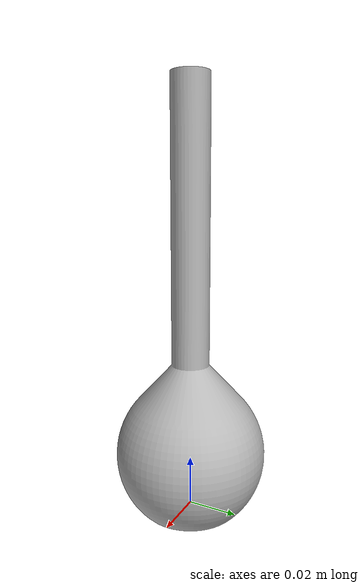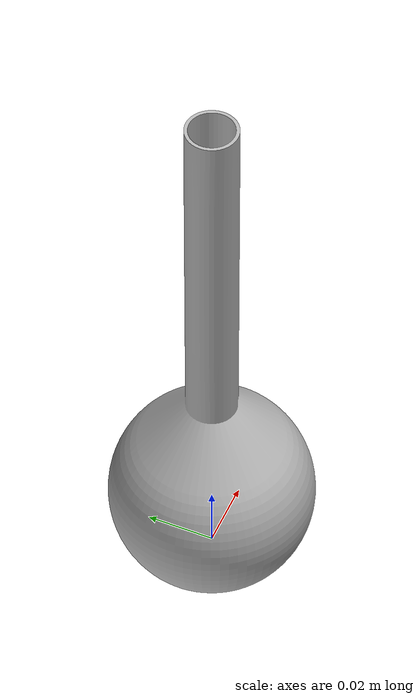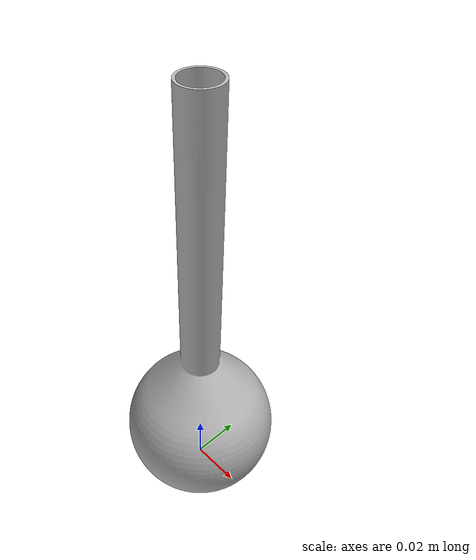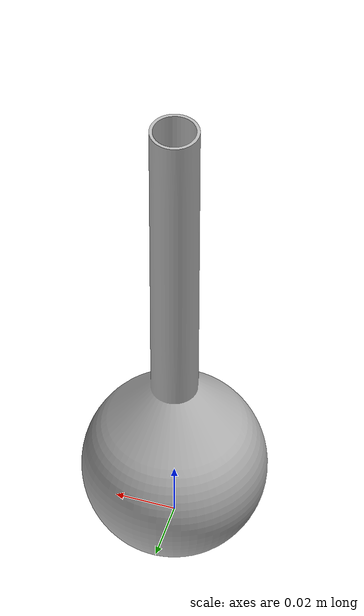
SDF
<sdf version="1.6">
  <model name="block">
    <static>false</static>
    <link name="link">
      <inertial>
        <mass>0.2</mass>
        <inertia>
          <ixx>0.001</ixx>
          <iyy>0.001</iyy>
          <izz>0.001</izz>
        </inertia>
      </inertial>
      <collision name="collision">
        <geometry>
          <mesh>
            <uri>package://hts_robotics/objects/meshes/Volumetric_Flask_Measured_Low_Fidelity_mm.stl</uri>
            <scale>0.001 0.001 0.001</scale>
          </mesh>
        </geometry>
      </collision>
      <visual name="visual">
        <geometry>
          <mesh>
            <uri>package://hts_robotics/objects/meshes/Volumetric_Flask_Measured_Medium_Fidelity_mm.stl</uri>
            <scale>0.001 0.001 0.001</scale>
          </mesh>
        </geometry>
      </visual>
    </link>
  </model>
</sdf>
